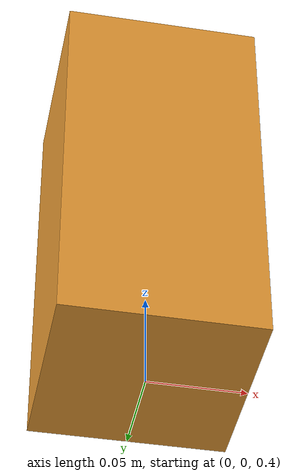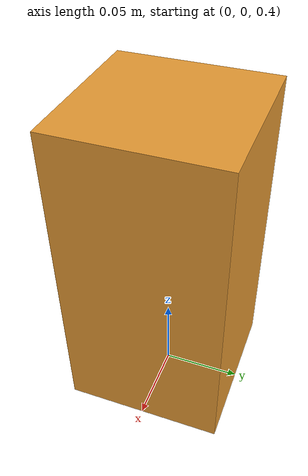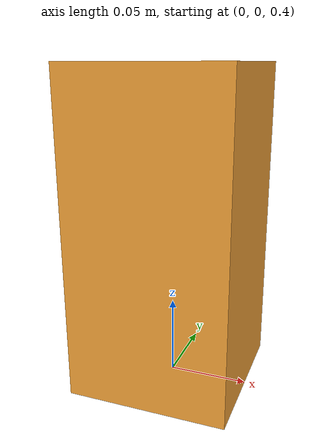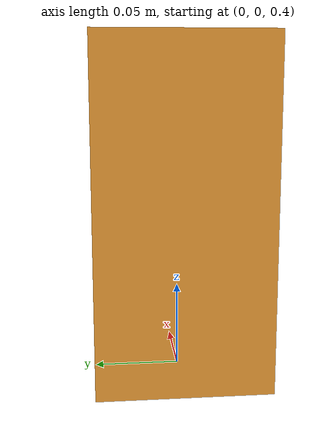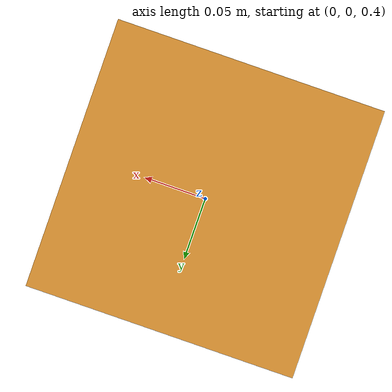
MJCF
<mujoco model="box_model">
    <worldbody>
        <!-- Free object (pickable) -->
        <body name="box_base" pos="0 0 0.5">
            <joint type="free"/>
            <!-- Box geometry -->
            <geom
                name="box_geom"
                type="box"
                size="0.05 0.05 0.1"
                rgba="0.9 0.6 0.2 1"
                contype="1"
                conaffinity="1"
                friction="1 0.0 0.0"
                mass="1.0"
                priority="1"
                solref="0.0001 1"
                solimp="0.9 0.95 0.01"
            />
            <!-- Optional site for robot to target when grasping -->
        </body>
    </worldbody>
</mujoco>
